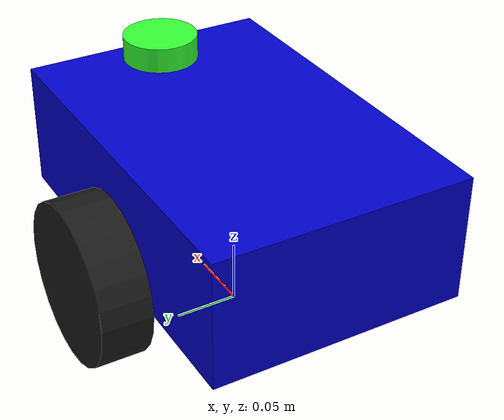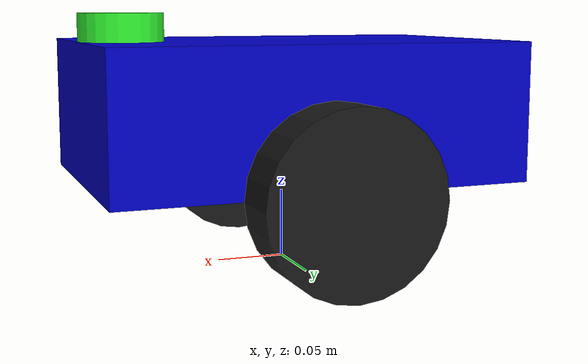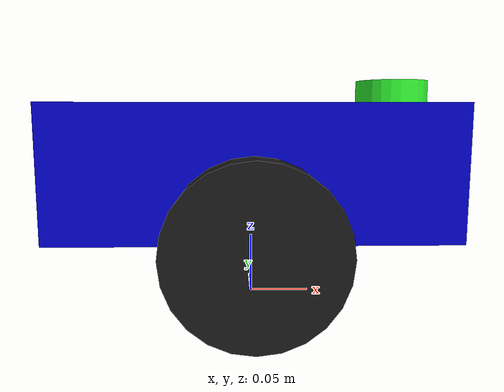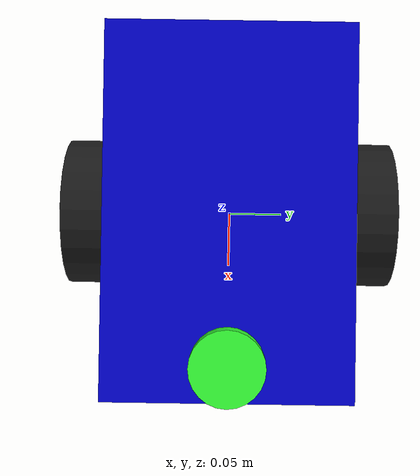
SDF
<?xml version="1.0"?>
<sdf version="1.7">
  <model name="jimbo_robot">
    <pose>0 0 0 0 0 0</pose>

    <!-- Base -->
    <link name="base_link">
      <pose>0 0 0.1135 0 0 0</pose>
      <visual name="base_visual">
        <geometry>
          <box>
            <size>0.3 0.2 0.1</size>
          </box>
        </geometry>
        <material>
          <ambient>0 0 0.8 1</ambient>
          <diffuse>0 0 0.8 1</diffuse>
        </material>
      </visual>
      <collision name="base_collision">
        <geometry>
          <box>
            <size>0.3 0.2 0.1</size>
          </box>
        </geometry>
      </collision>
      <inertial>
        <mass>3.0</mass>
        <inertia>
          <ixx>0.0125</ixx>
          <iyy>0.025</iyy>
          <izz>0.0325</izz>
          <ixy>0</ixy>
          <ixz>0</ixz>
          <iyz>0</iyz>
        </inertia>
      </inertial>
    </link>

    <!-- Left Wheel -->
    <link name="left_wheel">
      <pose relative_to='base_link'>0 0.12 -0.05 0 0 0</pose>
      <visual name="left_wheel_visual">
        <pose>0 0 0 1.5708 0 0</pose>
        <geometry>
          <cylinder>
            <radius>0.0635</radius>
            <length>0.04</length>
          </cylinder>
        </geometry>
        <material>
          <ambient>0.1 0.1 0.1 1</ambient>
          <diffuse>0.1 0.1 0.1 1</diffuse>
        </material>
      </visual>
      <collision name="left_wheel_collision">
        <pose>0 0 0 1.5708 0 0</pose>
        <geometry>
          <cylinder>
            <radius>0.0635</radius>
            <length>0.04</length>
          </cylinder>
        </geometry>
      </collision>
      <inertial>
        <mass>0.3</mass>
        <inertia>
          <ixx>0.000025</ixx>
          <iyy>0.000025</iyy>
          <izz>0.000008</izz>
          <ixy>0</ixy>
          <ixz>0</ixz>
          <iyz>0</iyz>
        </inertia>
      </inertial>
    </link>

    <!-- Right Wheel -->
    <link name="right_wheel">
      <pose relative_to='base_link'>0 -0.12 -0.05 0 0 0</pose>
      <visual name="right_wheel_visual">
        <pose>0 0 0 -1.5708 0 0</pose>
        <geometry>
          <cylinder>
            <radius>0.0635</radius>
            <length>0.04</length>
          </cylinder>
        </geometry>
        <material>
          <ambient>0.1 0.1 0.1 1</ambient>
          <diffuse>0.1 0.1 0.1 1</diffuse>
        </material>
      </visual>
      <collision name="right_wheel_collision">
        <pose>0 0 0 -1.5708 0 0</pose>
        <geometry>
          <cylinder>
            <radius>0.0635</radius>
            <length>0.04</length>
          </cylinder>
        </geometry>
      </collision>
      <inertial>
        <mass>0.3</mass>
        <inertia>
          <ixx>0.000025</ixx>
          <iyy>0.000025</iyy>
          <izz>0.000008</izz>
          <ixy>0</ixy>
          <ixz>0</ixz>
          <iyz>0</iyz>
        </inertia>
      </inertial>
    </link>

    <!-- LiDAR -->
    <link name="robot_lidar_link">
      <pose relative_to='base_link'>0.12 0 0.06 0 0 0</pose>
      <visual name="lidar_visual">
        <geometry>
          <cylinder>
            <radius>0.03</radius>
            <length>0.02</length>
          </cylinder>
        </geometry>
        <material>
          <ambient>0.2 1 0.2 1</ambient>
          <diffuse>0.2 1 0.2 1</diffuse>
        </material>
      </visual>

      <sensor name="lidar_sensor" type="gpu_lidar">
        <pose>0 0 0 0 0 0</pose>
        <update_rate>20</update_rate>
        <visualize>true</visualize>
        <ray>
          <scan>
            <horizontal>
              <samples>720</samples>
              <resolution>1</resolution>
              <min_angle>-1.57</min_angle>
              <max_angle>1.57</max_angle>
            </horizontal>
          </scan>
          <range>
            <min>0.12</min>
            <max>10.0</max>
            <resolution>0.01</resolution>
          </range>
        </ray>
        <plugin name="ros_gz_lidar" filename="libgz-sim-ros2-sensor-system.so">
          <ros>
            <remapping>scan:=scan</remapping>
            <namespace>/</namespace>
          </ros>
        </plugin>
      </sensor>
    </link>

    <!-- Joints -->
    <joint name="left_wheel_joint" type="revolute">
      <parent>base_link</parent>
      <child>left_wheel</child>
      <axis>
        <xyz>0 1 0</xyz>
      </axis>
    </joint>

    <joint name="right_wheel_joint" type="revolute">
      <parent>base_link</parent>
      <child>right_wheel</child>
      <axis>
        <xyz>0 1 0</xyz>
      </axis>
    </joint>

    <joint name="lidar_joint" type="fixed">
      <parent>base_link</parent>
      <child>robot_lidar_link</child>
    </joint>

    <static>false</static>
  </model>
</sdf>
